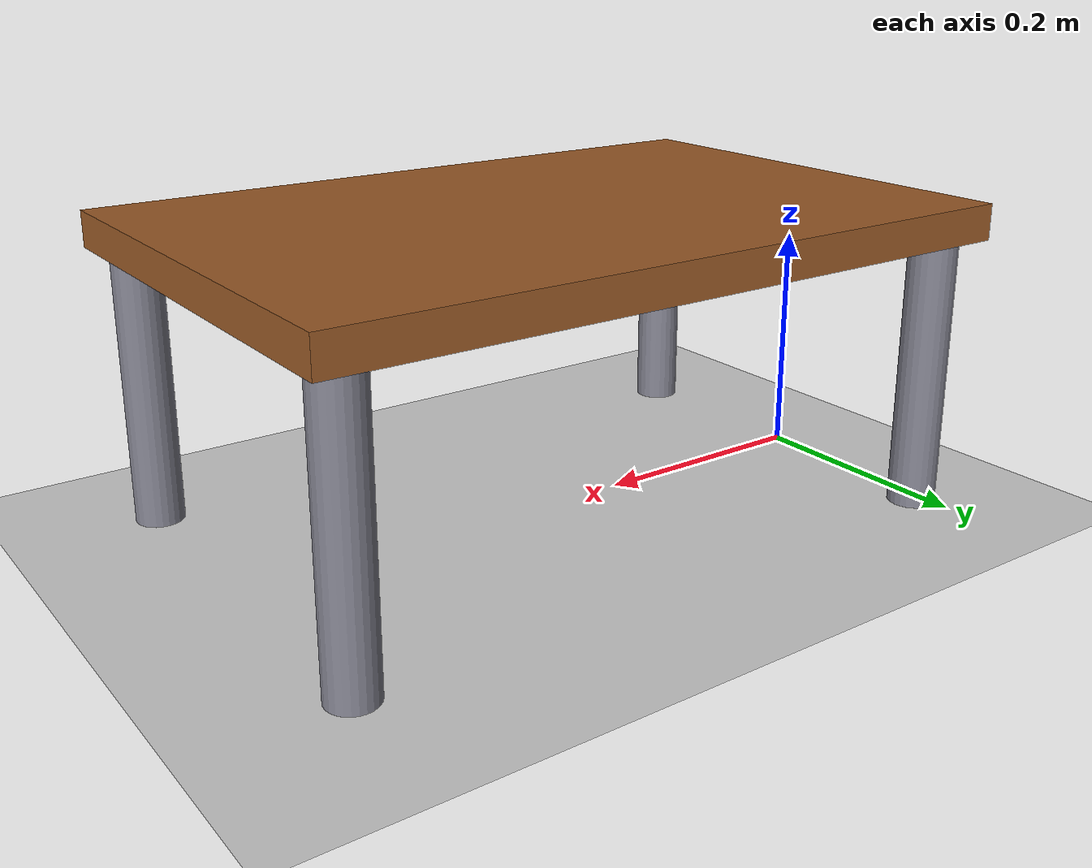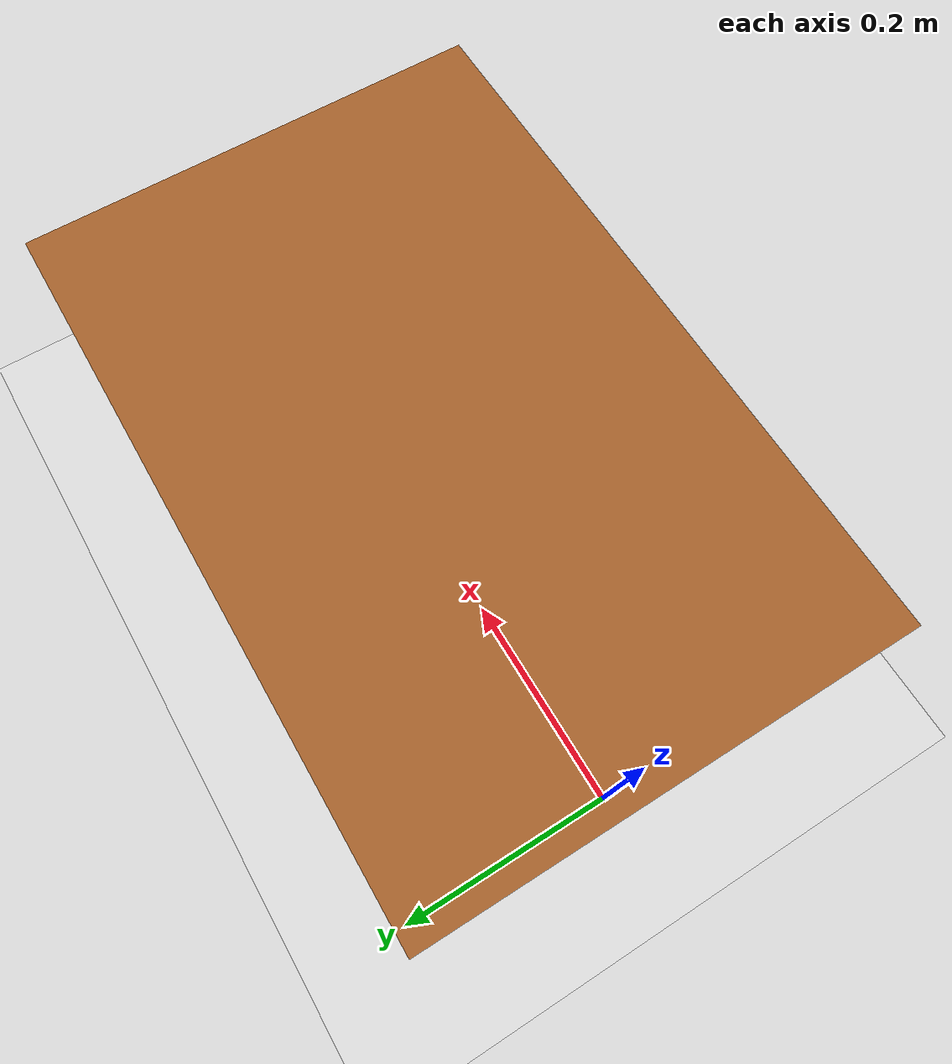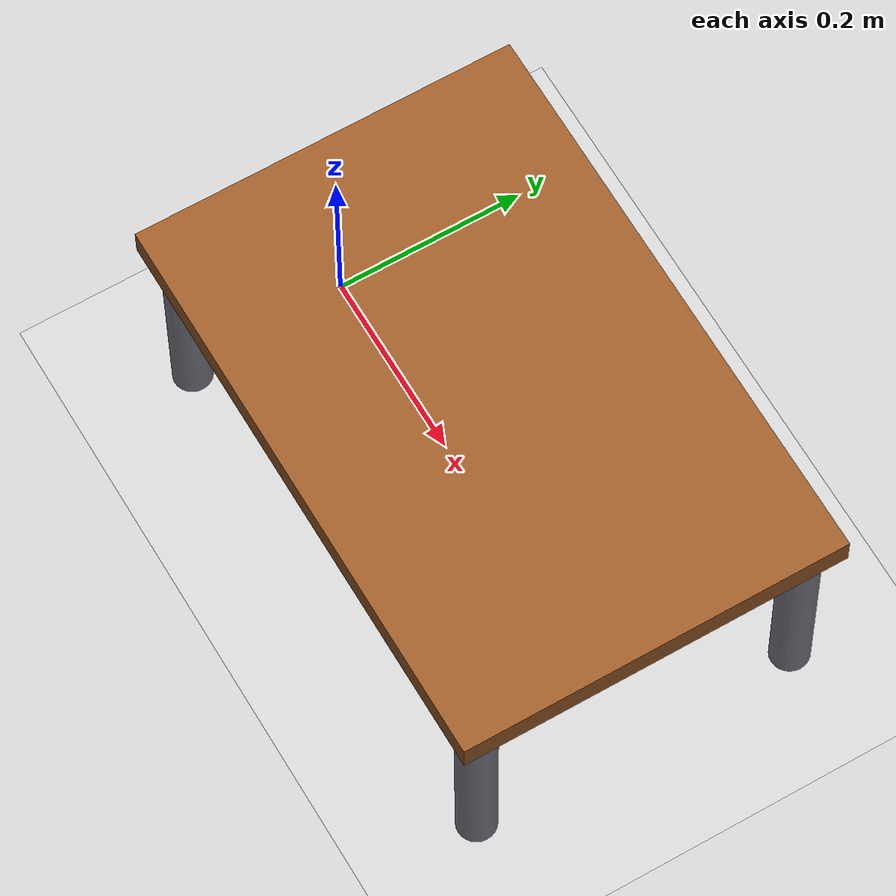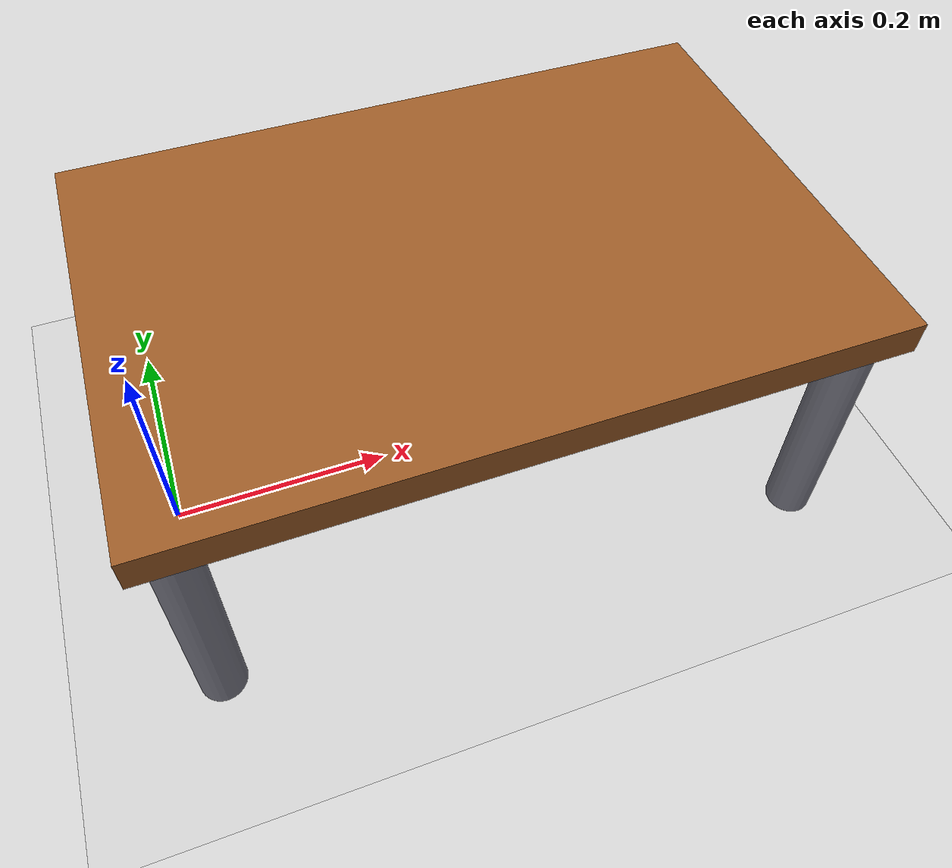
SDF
<?xml version="1.0" ?>
<sdf version="1.6">
  <world name="arm_and_table">
    <physics name="smooth_physics" type="ignored">
      <max_step_size>0.0025</max_step_size>
      <real_time_factor>1.0</real_time_factor>
    </physics>

    <plugin
      filename="ignition-gazebo-physics-system"
      name="gz::sim::systems::Physics">
    </plugin>
    <plugin
      filename="ignition-gazebo-user-commands-system"
      name="gz::sim::systems::UserCommands">
    </plugin>
    <plugin
      filename="ignition-gazebo-sensors-system"
      name="gz::sim::systems::Sensors">
      <render_engine>ogre</render_engine>
    </plugin>
    <plugin
      filename="ignition-gazebo-scene-broadcaster-system"
      name="gz::sim::systems::SceneBroadcaster">
    </plugin>

    <scene>
      <shadows>0</shadows>
    </scene>

    <include>
      <uri>model://sun</uri>
    </include>

    <!-- 静态场景模型由 world 直接组合。机械臂和方块随后作为独立动态模型生成。 -->
    <include>
      <uri>model://table</uri>
      <name>table</name>
      <pose>0.28 0 0 0 0 1.5708</pose>
    </include>

    <!-- 视觉抓取目标方块由 camera_grasp_sim 在机械臂生成后动态创建。
         不能在 world 中预埋 DetachableJoint 方块，否则插件初始化时
         child_model=rebotarm 可能还不存在，吸附会不稳定。 -->

    <include>
      <uri>model://ground_plane</uri>
      <name>ground_plane</name>
    </include>

  </world>
</sdf>

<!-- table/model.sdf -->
<sdf version="1.5">
  <model name="table">
    <static>true</static>
    <link name="link">
      <collision name="surface">
        <pose>0 0 0.245 0 0 0</pose>
        <geometry>
          <box>
            <size>0.4 0.6 0.03</size>
          </box>
        </geometry>
        <surface>
          <friction>
            <ode>
              <mu>0.6</mu>
              <mu2>0.6</mu2>
            </ode>
          </friction>
        </surface>
      </collision>
      <visual name="visual1">
        <pose>0 0 0.245 0 0 0</pose>
        <geometry>
          <box>
            <size>0.4 0.6 0.03</size>
          </box>
        </geometry>
        <material>
          <ambient>0.4 0.2 0.08 1</ambient>
          <diffuse>0.6 0.35 0.15 1</diffuse>
          <specular>0.05 0.05 0.05 1</specular>
        </material>
      </visual>
      <collision name="front_left_leg">
        <pose>0.17 0.27 0.1225 0 0 0</pose>
        <geometry>
          <cylinder>
            <radius>0.02</radius>
            <length>0.245</length>
          </cylinder>
        </geometry>
      </collision>
      <visual name="front_left_leg_visual">
        <pose>0.17 0.27 0.1225 0 0 0</pose>
        <geometry>
          <cylinder>
            <radius>0.02</radius>
            <length>0.245</length>
          </cylinder>
        </geometry>
        <material>
          <ambient>0.3 0.3 0.35 1</ambient>
          <diffuse>0.5 0.5 0.55 1</diffuse>
          <specular>0.1 0.1 0.1 1</specular>
        </material>
      </visual>
      <collision name="front_right_leg">
        <pose>0.17 -0.27 0.1225 0 0 0</pose>
        <geometry>
          <cylinder>
            <radius>0.02</radius>
            <length>0.245</length>
          </cylinder>
        </geometry>
      </collision>
      <visual name="front_right_leg_visual">
        <pose>0.17 -0.27 0.1225 0 0 0</pose>
        <geometry>
          <cylinder>
            <radius>0.02</radius>
            <length>0.245</length>
          </cylinder>
        </geometry>
        <material>
          <ambient>0.3 0.3 0.35 1</ambient>
          <diffuse>0.5 0.5 0.55 1</diffuse>
          <specular>0.1 0.1 0.1 1</specular>
        </material>
      </visual>
      <collision name="back_right_leg">
        <pose>-0.17 -0.27 0.1225 0 0 0</pose>
        <geometry>
          <cylinder>
            <radius>0.02</radius>
            <length>0.245</length>
          </cylinder>
        </geometry>
      </collision>
      <visual name="back_right_leg_visual">
        <pose>-0.17 -0.27 0.1225 0 0 0</pose>
        <geometry>
          <cylinder>
            <radius>0.02</radius>
            <length>0.245</length>
          </cylinder>
        </geometry>
        <material>
          <ambient>0.3 0.3 0.35 1</ambient>
          <diffuse>0.5 0.5 0.55 1</diffuse>
          <specular>0.1 0.1 0.1 1</specular>
        </material>
      </visual>
      <collision name="back_left_leg">
        <pose>-0.17 0.27 0.1225 0 0 0</pose>
        <geometry>
          <cylinder>
            <radius>0.02</radius>
            <length>0.245</length>
          </cylinder>
        </geometry>
      </collision>
      <visual name="back_left_leg_visual">
        <pose>-0.17 0.27 0.1225 0 0 0</pose>
        <geometry>
          <cylinder>
            <radius>0.02</radius>
            <length>0.245</length>
          </cylinder>
        </geometry>
        <material>
          <ambient>0.3 0.3 0.35 1</ambient>
          <diffuse>0.5 0.5 0.55 1</diffuse>
          <specular>0.1 0.1 0.1 1</specular>
        </material>
      </visual>
    </link>
  </model>
</sdf>
